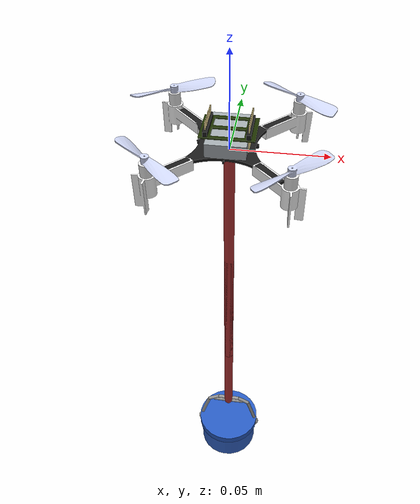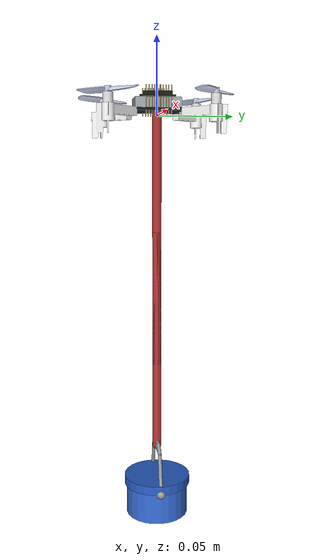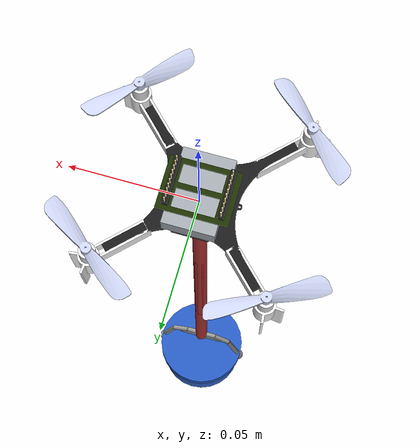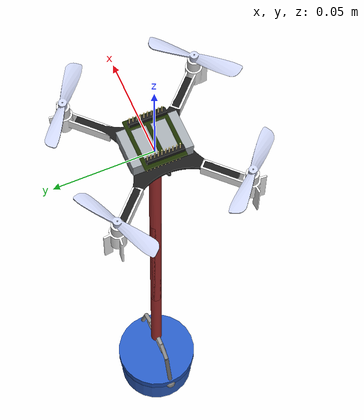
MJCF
<mujoco model="cf2">
  <option integrator="Euler" timestep="0.02" iterations="1" ls_iterations="5" solver="Newton">
    <flag eulerdamp="disable"/>
  </option>

  <compiler inertiafromgeom="false" meshdir="assets" autolimits="true"/>

  <default>
    <default class="cf2">
      <default class="visual">
        <geom group="2" type="mesh" contype="0" conaffinity="0"/>
      </default>
      <site group="5"/>
    </default>
  </default>

  <asset>
    <material name="polished_plastic" rgba="0.631 0.659 0.678 1"/>
    <material name="polished_gold" rgba="0.969 0.878 0.6 1"/>
    <material name="medium_gloss_plastic" rgba="0.109 0.184 0.0 1"/>
    <material name="propeller_plastic" rgba="0.792 0.820 0.933 1"/>
    <material name="white" rgba="1 1 1 1"/>
    <material name="body_frame_plastic" rgba="0.102 0.102 0.102 1"/>
    <material name="burnished_chrome" rgba="0.898 0.898 0.898 1"/>

    <!-- Bucket materials -->
    <material name="bucket_blue" rgba="0.2 0.4 0.8 0.9"/>
    <material name="bucket_rim" rgba="0.15 0.35 0.75 1"/>
    <material name="bucket_handle" rgba="0.6 0.6 0.6 1"/>

    <mesh file="cf2_0.obj"/>
    <mesh file="cf2_1.obj"/>
    <mesh file="cf2_2.obj"/>
    <mesh file="cf2_3.obj"/>
    <mesh file="cf2_4.obj"/>
    <mesh file="cf2_5.obj"/>
    <mesh file="cf2_6.obj"/>
  </asset>

  <worldbody>
    <body name="cf2" pos="0 0 0" childclass="cf2">
      <freejoint/>
      <inertial pos="0 0 0" mass="0.027" diaginertia="2.3951e-5 2.3951e-5 3.2347e-5"/>
      <camera name="track" pos="-1 0 .5" xyaxes="0 -1 0 1 0 2" mode="trackcom"/>
      <geom mesh="cf2_0" material="propeller_plastic" class="visual"/>
      <geom mesh="cf2_1" material="medium_gloss_plastic" class="visual"/>
      <geom mesh="cf2_2" material="polished_gold" class="visual"/>
      <geom mesh="cf2_3" material="polished_plastic" class="visual"/>
      <geom mesh="cf2_4" material="burnished_chrome" class="visual"/>
      <geom mesh="cf2_5" material="body_frame_plastic" class="visual"/>
      <geom mesh="cf2_6" material="white" class="visual"/>
      <site name="imu"/>
      <site name="actuation"/>

      <!-- ===== BEGIN BUCKET LOAD ===== -->
      <body name="bucket_hanger" pos="0 0 0">
        <!-- First hinge: alpha (swing in x-z), about Y axis -->
        <joint name="pendulum_alpha" type="hinge" axis="0 1 0"
               limited="false" damping="0" stiffness="0"/>
        <!-- Second hinge: beta (swing in y-z), about X axis -->
        <joint name="pendulum_beta" type="hinge" axis="1 0 0"
               limited="false" damping="0" stiffness="0"/>
        <!-- give it some mass & inertia -->
        <inertial pos="0 0 0" mass="1.0"
                  diaginertia="0.001 0.001 0.0001"/>
        <!-- a thin rod connecting to bucket handle -->
        <geom name="pendulum_rod" type="capsule"
              fromto="0 0 0   0 0 -0.165" size="0.003"
              rgba="0.7 0.2 0.2 1"/>

        <!-- Bucket construction -->
        <body name="bucket" pos="0 0 -0.25">
          <!-- Main bucket mass and inertia -->
          <inertial pos="0 0 -0.015" mass="0.5"
                    diaginertia="0.0012 0.0012 0.0006"/>

          <!-- Bucket bottom -->
          <geom name="bucket_bottom" type="cylinder"
                pos="0 0 -0.0195" size="0.0195 0.0015"
                material="bucket_blue"/>

          <!-- Bucket walls (using multiple cylinders to create hollow effect) -->
          <!-- Outer wall -->
          <geom name="bucket_wall_outer" type="cylinder"
                pos="0 0 -0.0105" size="0.021 0.0105"
                material="bucket_blue"/>

          <!-- Inner hollow space (invisible, for physics) -->
          <geom name="bucket_wall_inner" type="cylinder"
                pos="0 0 -0.0075" size="0.018 0.0075"
                material="bucket_blue" group="0" contype="0" conaffinity="0"/>

          <!-- Bucket rim -->
          <geom name="bucket_rim" type="cylinder"
                pos="0 0 0.003" size="0.0225 0.003"
                material="bucket_rim"/>

          <!-- Handle attachment points -->
          <geom name="handle_attach1" type="sphere"
                pos="0.021 0 0" size="0.003"
                material="bucket_handle"/>
          <geom name="handle_attach2" type="sphere"
                pos="-0.021 0 0" size="0.003"
                material="bucket_handle"/>

          <!-- Handle (wire-frame style using capsules) -->
          <!-- Connection point from pendulum rod to handle -->
          <geom name="rod_to_handle_connector" type="capsule"
                fromto="0 0 0.027  0 0 0.175" size="0.003"
                rgba="0.7 0.2 0.2 1"/>

          <!-- Main handle arc (approximated with multiple segments) -->
          <geom name="handle_seg1" type="capsule"
                fromto="0.021 0 0.0045  0.015 0 0.0255" size="0.0012"
                material="bucket_handle"/>
          <geom name="handle_seg2" type="capsule"
                fromto="0.015 0 0.0255  0.0075 0 0.030" size="0.0012"
                material="bucket_handle"/>
          <geom name="handle_seg3" type="capsule"
                fromto="0.0075 0 0.030  -0.0075 0 0.030" size="0.0012"
                material="bucket_handle"/>
          <geom name="handle_seg4" type="capsule"
                fromto="-0.0075 0 0.030  -0.015 0 0.0255" size="0.0012"
                material="bucket_handle"/>
          <geom name="handle_seg5" type="capsule"
                fromto="-0.015 0 0.0255  -0.021 0 0.0045" size="0.0012"
                material="bucket_handle"/>

          <!-- Handle grip (horizontal bar) - this is where the rod connects -->
          <geom name="handle_grip" type="capsule"
                fromto="-0.0105 0 0.027  0.0105 0 0.027" size="0.0015"
                material="bucket_handle"/>

          <!-- Optional: Add some visual detail lines on the bucket -->
          <geom name="bucket_detail1" type="capsule"
                fromto="0.012 0 -0.0075  -0.012 0 -0.0075" size="0.00045"
                rgba="0.15 0.3 0.6 0.8"/>
          <geom name="bucket_detail2" type="capsule"
                fromto="0 0.012 -0.0075  0 -0.012 -0.0075" size="0.00045"
                rgba="0.15 0.3 0.6 0.8"/>
        </body>
      </body>
      <!-- ===== END BUCKET LOAD ===== -->

    </body>
  </worldbody>

  <actuator>
    <motor class="cf2" ctrlrange="0 1" gear="0 0 1 0 0 0" site="actuation" name="body_thrust"/>
    <motor class="cf2" ctrlrange="-1 1" gear="0 0 0 0.001 0 0" site="actuation" name="x_moment"/>
    <motor class="cf2" ctrlrange="-1 1" gear="0 0 0 0 0.001 0" site="actuation" name="y_moment"/>
    <motor class="cf2" ctrlrange="-1 1" gear="0 0 0 0 0 0.001" site="actuation" name="z_moment"/>
  </actuator>

  <sensor>
    <gyro name="body_gyro" site="imu"/>
    <accelerometer name="body_linacc" site="imu"/>
    <framequat name="body_quat" objtype="site" objname="imu"/>
  </sensor>

  <keyframe>
    <key name="hover" qpos="0 0 0.1 1 0 0 0 0 0" ctrl="0.26487 0 0 0"/>
  </keyframe>
</mujoco>
